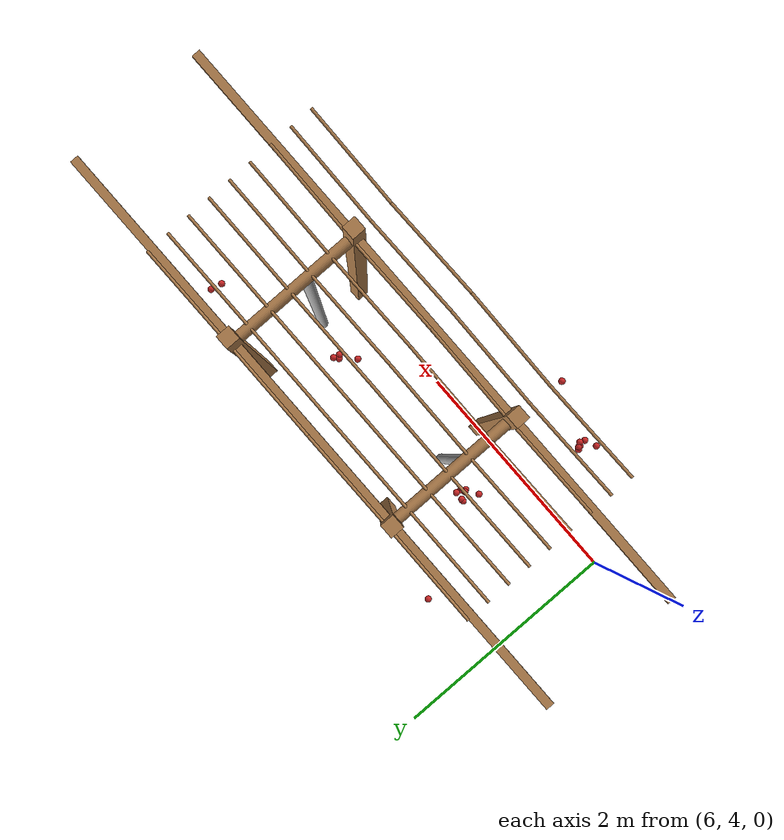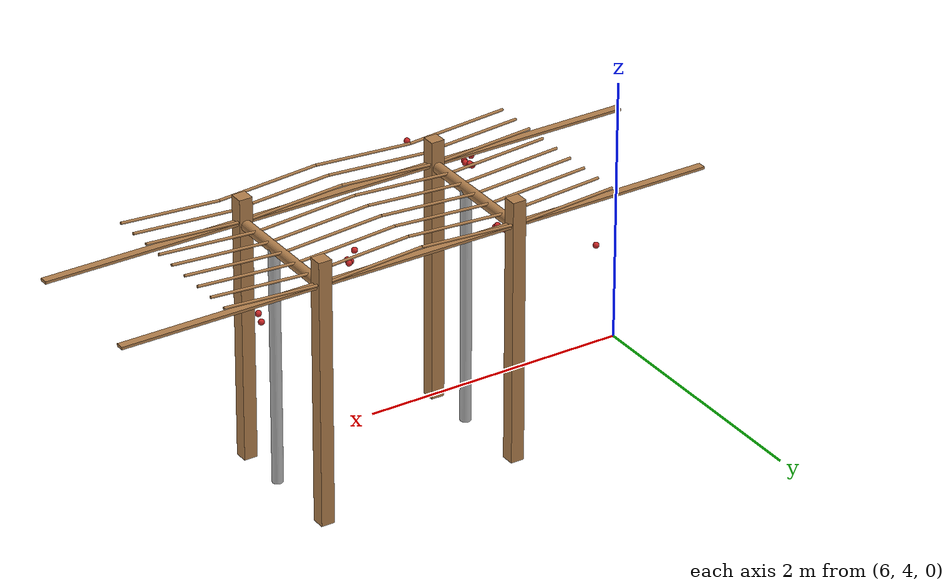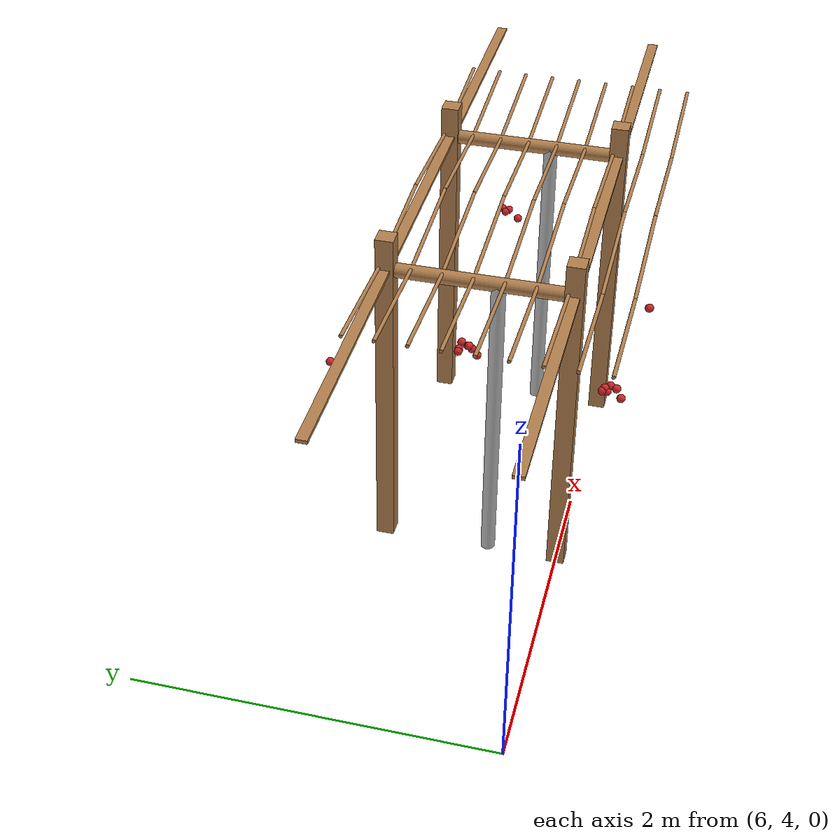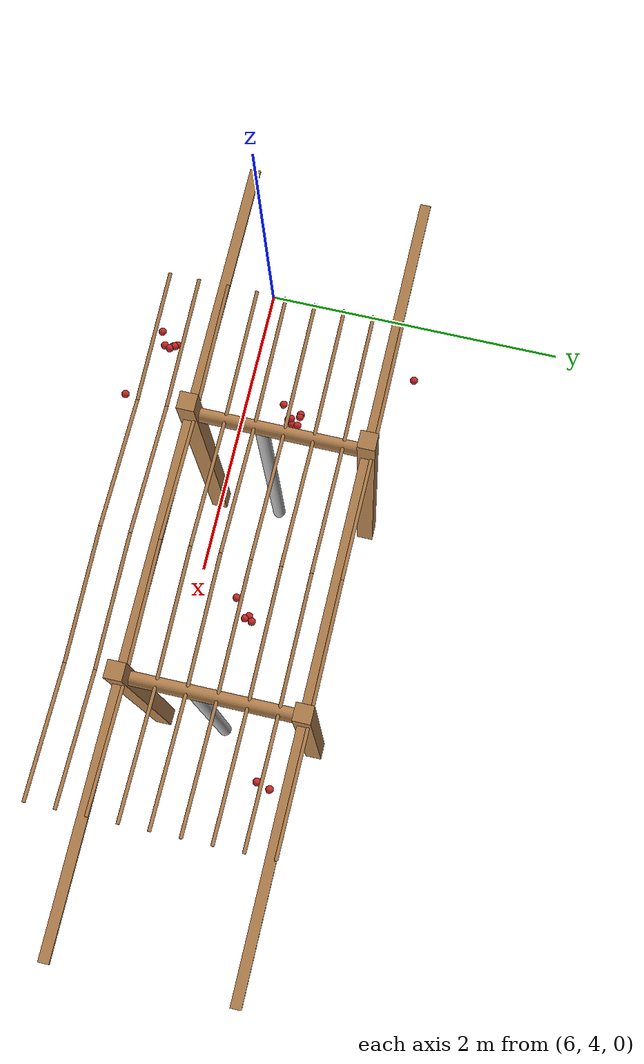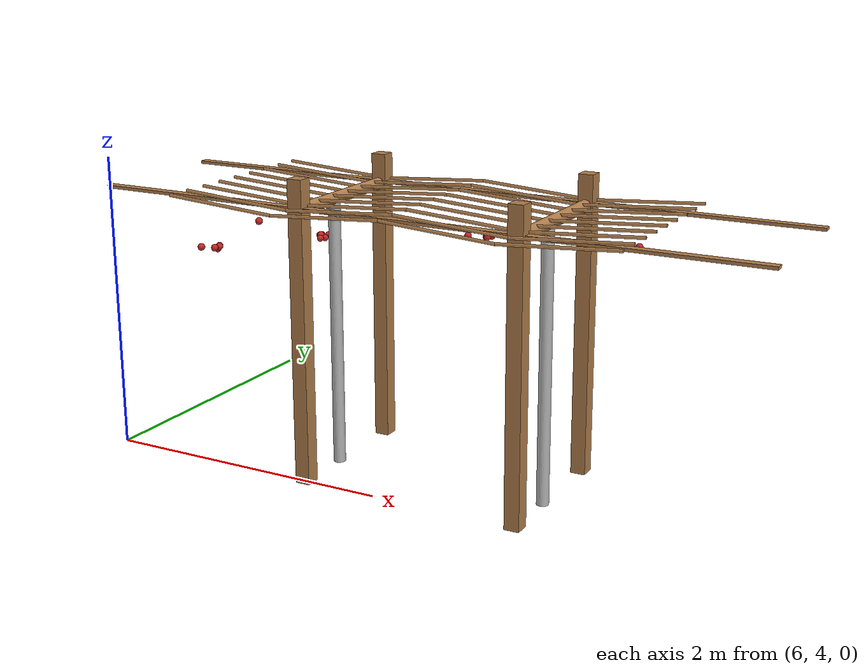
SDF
<sdf version="1.4">
 <model name="pergola">
  <include><name>post_59</name><pose>7.5 4.0 0 0 0 0</pose><uri>model://post</uri></include>
  <include><name>post_60</name><pose>7.5 5.0 0 0 0 0</pose><uri>model://post</uri></include>
  <include><name>post_70</name><pose>9.0 4.0 0 0 0 0</pose><uri>model://post</uri></include>
  <include><name>post_71</name><pose>9.0 5.0 0 0 0 0</pose><uri>model://post</uri></include>
  <link name="beam_48">
   <pose>6.75 4.0 1.81 0 0 0</pose>
   <collision name="collision"><geometry><box><size>1.5 0.06 0.02</size></box></geometry></collision>
   <visual name="visual">
    <geometry><box><size>1.5 0.06 0.02</size></box></geometry>
    <material><script><name>Gazebo/Wood</name></script></material>
   </visual>
   <inertial>
    <mass>5</mass>
    <inertia>
     <ixx>0.0016666666666666668</ixx>
     <ixy>0.0</ixy>
     <ixz>0.0</ixz>
     <iyy>0.9390000000000001</iyy>
     <iyz>0.0</iyz>
     <izz>0.9376666666666665</izz>
    </inertia>
   </inertial>
  </link>
  <link name="beam_49">
   <pose>6.75 5.0 1.81 0 0 0</pose>
   <collision name="collision"><geometry><box><size>1.5 0.06 0.02</size></box></geometry></collision>
   <visual name="visual">
    <geometry><box><size>1.5 0.06 0.02</size></box></geometry>
    <material><script><name>Gazebo/Wood</name></script></material>
   </visual>
   <inertial>
    <mass>5</mass>
    <inertia>
     <ixx>0.0016666666666666668</ixx>
     <ixy>0.0</ixy>
     <ixz>0.0</ixz>
     <iyy>0.9390000000000001</iyy>
     <iyz>0.0</iyz>
     <izz>0.9376666666666665</izz>
    </inertia>
   </inertial>
  </link>
  <link name="beam_59">
   <pose>8.25 4.0 1.81 0 0 0</pose>
   <collision name="collision"><geometry><box><size>1.5 0.06 0.02</size></box></geometry></collision>
   <visual name="visual">
    <geometry><box><size>1.5 0.06 0.02</size></box></geometry>
    <material><script><name>Gazebo/Wood</name></script></material>
   </visual>
   <inertial>
    <mass>5</mass>
    <inertia>
     <ixx>0.0016666666666666668</ixx>
     <ixy>0.0</ixy>
     <ixz>0.0</ixz>
     <iyy>0.9390000000000001</iyy>
     <iyz>0.0</iyz>
     <izz>0.9376666666666665</izz>
    </inertia>
   </inertial>
  </link>
  <link name="beam_60">
   <pose>8.25 5.0 1.81 0 0 0</pose>
   <collision name="collision"><geometry><box><size>1.5 0.06 0.02</size></box></geometry></collision>
   <visual name="visual">
    <geometry><box><size>1.5 0.06 0.02</size></box></geometry>
    <material><script><name>Gazebo/Wood</name></script></material>
   </visual>
   <inertial>
    <mass>5</mass>
    <inertia>
     <ixx>0.0016666666666666668</ixx>
     <ixy>0.0</ixy>
     <ixz>0.0</ixz>
     <iyy>0.9390000000000001</iyy>
     <iyz>0.0</iyz>
     <izz>0.9376666666666665</izz>
    </inertia>
   </inertial>
  </link>
  <link name="beam_70">
   <pose>9.75 4.0 1.81 0 0 0</pose>
   <collision name="collision"><geometry><box><size>1.5 0.06 0.02</size></box></geometry></collision>
   <visual name="visual">
    <geometry><box><size>1.5 0.06 0.02</size></box></geometry>
    <material><script><name>Gazebo/Wood</name></script></material>
   </visual>
   <inertial>
    <mass>5</mass>
    <inertia>
     <ixx>0.0016666666666666668</ixx>
     <ixy>0.0</ixy>
     <ixz>0.0</ixz>
     <iyy>0.9390000000000001</iyy>
     <iyz>0.0</iyz>
     <izz>0.9376666666666665</izz>
    </inertia>
   </inertial>
  </link>
  <link name="beam_71">
   <pose>9.75 5.0 1.81 0 0 0</pose>
   <collision name="collision"><geometry><box><size>1.5 0.06 0.02</size></box></geometry></collision>
   <visual name="visual">
    <geometry><box><size>1.5 0.06 0.02</size></box></geometry>
    <material><script><name>Gazebo/Wood</name></script></material>
   </visual>
   <inertial>
    <mass>5</mass>
    <inertia>
     <ixx>0.0016666666666666668</ixx>
     <ixy>0.0</ixy>
     <ixz>0.0</ixz>
     <iyy>0.9390000000000001</iyy>
     <iyz>0.0</iyz>
     <izz>0.9376666666666665</izz>
    </inertia>
   </inertial>
  </link>
  <include><name>tree_54</name><pose>7.5 4.4 0 0 0 0</pose><uri>model://tree_trunk</uri></include>
  <include><name>tree_64</name><pose>9.0 4.4 0 0 0 0</pose><uri>model://tree_trunk</uri></include>
  <link name="baseBranch_54">
   <pose>7.5 4.5 1.8 1.5707963267948966 0 0</pose>
   <collision name="collision">
    <geometry><cylinder><radius>0.04</radius><length>0.94</length></cylinder></geometry>
   </collision>
   <visual name="visual">
    <geometry><cylinder><radius>0.04</radius><length>0.94</length></cylinder></geometry>
    <material><script><name>Gazebo/WoodFloor</name></script></material>
   </visual>
   <inertial>
    <mass>10</mass>
    <inertia>
     <ixx>0.7403333333333334</ixx>
     <ixy>0.0</ixy>
     <ixz>0.0</ixz>
     <iyy>0.7403333333333334</iyy>
     <iyz>0.0</iyz>
     <izz>0.008</izz>
    </inertia>
   </inertial>
  </link>
  <link name="baseBranch_64">
   <pose>9.0 4.5 1.8 1.5707963267948966 0 0</pose>
   <collision name="collision">
    <geometry><cylinder><radius>0.04</radius><length>0.94</length></cylinder></geometry>
   </collision>
   <visual name="visual">
    <geometry><cylinder><radius>0.04</radius><length>0.94</length></cylinder></geometry>
    <material><script><name>Gazebo/WoodFloor</name></script></material>
   </visual>
   <inertial>
    <mass>10</mass>
    <inertia>
     <ixx>0.7403333333333334</ixx>
     <ixy>0.0</ixy>
     <ixz>0.0</ixz>
     <iyy>0.7403333333333334</iyy>
     <iyz>0.0</iyz>
     <izz>0.008</izz>
    </inertia>
   </inertial>
  </link>
  <link name="vine_525">
   <pose>7.125 3.6966666666666663 1.85 0 -1.5042281630190728 0</pose>
   <collision name="collision">
    <geometry><cylinder><radius>0.01</radius><length>0.7516648189186453</length></cylinder></geometry>
   </collision>
   <visual name="visual">
    <geometry><cylinder><radius>0.01</radius><length>0.7516648189186453</length></cylinder></geometry>
    <material><script><name>Gazebo/WoodFloor</name></script></material>
   </visual>
   <inertial>
    <mass>5</mass>
    <inertia>
     <ixx>0.23554166666666657</ixx>
     <ixy>0.0</ixy>
     <ixz>0.0</ixz>
     <iyy>0.23554166666666657</iyy>
     <iyz>0.0</iyz>
     <izz>0.00025</izz>
    </inertia>
   </inertial>
  </link>
  <link name="vine_527">
   <pose>7.125 3.863333333333333 1.85 0 -1.5042281630190728 0</pose>
   <collision name="collision">
    <geometry><cylinder><radius>0.01</radius><length>0.7516648189186453</length></cylinder></geometry>
   </collision>
   <visual name="visual">
    <geometry><cylinder><radius>0.01</radius><length>0.7516648189186453</length></cylinder></geometry>
    <material><script><name>Gazebo/WoodFloor</name></script></material>
   </visual>
   <inertial>
    <mass>5</mass>
    <inertia>
     <ixx>0.23554166666666657</ixx>
     <ixy>0.0</ixy>
     <ixz>0.0</ixz>
     <iyy>0.23554166666666657</iyy>
     <iyz>0.0</iyz>
     <izz>0.00025</izz>
    </inertia>
   </inertial>
  </link>
  <link name="vine_529">
   <pose>7.125 4.03 1.85 0 -1.5042281630190728 0</pose>
   <collision name="collision">
    <geometry><cylinder><radius>0.01</radius><length>0.7516648189186453</length></cylinder></geometry>
   </collision>
   <visual name="visual">
    <geometry><cylinder><radius>0.01</radius><length>0.7516648189186453</length></cylinder></geometry>
    <material><script><name>Gazebo/WoodFloor</name></script></material>
   </visual>
   <inertial>
    <mass>5</mass>
    <inertia>
     <ixx>0.23554166666666657</ixx>
     <ixy>0.0</ixy>
     <ixz>0.0</ixz>
     <iyy>0.23554166666666657</iyy>
     <iyz>0.0</iyz>
     <izz>0.00025</izz>
    </inertia>
   </inertial>
  </link>
  <link name="vine_531">
   <pose>7.125 4.196666666666666 1.85 0 -1.5042281630190728 0</pose>
   <collision name="collision">
    <geometry><cylinder><radius>0.01</radius><length>0.7516648189186453</length></cylinder></geometry>
   </collision>
   <visual name="visual">
    <geometry><cylinder><radius>0.01</radius><length>0.7516648189186453</length></cylinder></geometry>
    <material><script><name>Gazebo/WoodFloor</name></script></material>
   </visual>
   <inertial>
    <mass>5</mass>
    <inertia>
     <ixx>0.23554166666666657</ixx>
     <ixy>0.0</ixy>
     <ixz>0.0</ixz>
     <iyy>0.23554166666666657</iyy>
     <iyz>0.0</iyz>
     <izz>0.00025</izz>
    </inertia>
   </inertial>
  </link>
  <link name="vine_533">
   <pose>7.125 4.363333333333333 1.85 0 -1.5042281630190728 0</pose>
   <collision name="collision">
    <geometry><cylinder><radius>0.01</radius><length>0.7516648189186453</length></cylinder></geometry>
   </collision>
   <visual name="visual">
    <geometry><cylinder><radius>0.01</radius><length>0.7516648189186453</length></cylinder></geometry>
    <material><script><name>Gazebo/WoodFloor</name></script></material>
   </visual>
   <inertial>
    <mass>5</mass>
    <inertia>
     <ixx>0.23554166666666657</ixx>
     <ixy>0.0</ixy>
     <ixz>0.0</ixz>
     <iyy>0.23554166666666657</iyy>
     <iyz>0.0</iyz>
     <izz>0.00025</izz>
    </inertia>
   </inertial>
  </link>
  <link name="vine_535">
   <pose>7.125 4.53 1.85 0 -1.5042281630190728 0</pose>
   <collision name="collision">
    <geometry><cylinder><radius>0.01</radius><length>0.7516648189186453</length></cylinder></geometry>
   </collision>
   <visual name="visual">
    <geometry><cylinder><radius>0.01</radius><length>0.7516648189186453</length></cylinder></geometry>
    <material><script><name>Gazebo/WoodFloor</name></script></material>
   </visual>
   <inertial>
    <mass>5</mass>
    <inertia>
     <ixx>0.23554166666666657</ixx>
     <ixy>0.0</ixy>
     <ixz>0.0</ixz>
     <iyy>0.23554166666666657</iyy>
     <iyz>0.0</iyz>
     <izz>0.00025</izz>
    </inertia>
   </inertial>
  </link>
  <link name="vine_537">
   <pose>7.125 4.696666666666666 1.85 0 -1.5042281630190728 0</pose>
   <collision name="collision">
    <geometry><cylinder><radius>0.01</radius><length>0.7516648189186453</length></cylinder></geometry>
   </collision>
   <visual name="visual">
    <geometry><cylinder><radius>0.01</radius><length>0.7516648189186453</length></cylinder></geometry>
    <material><script><name>Gazebo/WoodFloor</name></script></material>
   </visual>
   <inertial>
    <mass>5</mass>
    <inertia>
     <ixx>0.23554166666666657</ixx>
     <ixy>0.0</ixy>
     <ixz>0.0</ixz>
     <iyy>0.23554166666666657</iyy>
     <iyz>0.0</iyz>
     <izz>0.00025</izz>
    </inertia>
   </inertial>
  </link>
  <link name="vine_539">
   <pose>7.125 4.863333333333333 1.85 0 -1.5042281630190728 0</pose>
   <collision name="collision">
    <geometry><cylinder><radius>0.01</radius><length>0.7516648189186453</length></cylinder></geometry>
   </collision>
   <visual name="visual">
    <geometry><cylinder><radius>0.01</radius><length>0.7516648189186453</length></cylinder></geometry>
    <material><script><name>Gazebo/WoodFloor</name></script></material>
   </visual>
   <inertial>
    <mass>5</mass>
    <inertia>
     <ixx>0.23554166666666657</ixx>
     <ixy>0.0</ixy>
     <ixz>0.0</ixz>
     <iyy>0.23554166666666657</iyy>
     <iyz>0.0</iyz>
     <izz>0.00025</izz>
    </inertia>
   </inertial>
  </link>
  <link name="vine_541">
   <pose>7.125 5.03 1.85 0 -1.5042281630190728 0</pose>
   <collision name="collision">
    <geometry><cylinder><radius>0.01</radius><length>0.7516648189186453</length></cylinder></geometry>
   </collision>
   <visual name="visual">
    <geometry><cylinder><radius>0.01</radius><length>0.7516648189186453</length></cylinder></geometry>
    <material><script><name>Gazebo/WoodFloor</name></script></material>
   </visual>
   <inertial>
    <mass>5</mass>
    <inertia>
     <ixx>0.23554166666666657</ixx>
     <ixy>0.0</ixy>
     <ixz>0.0</ixz>
     <iyy>0.23554166666666657</iyy>
     <iyz>0.0</iyz>
     <izz>0.00025</izz>
    </inertia>
   </inertial>
  </link>
  <link name="vine_644">
   <pose>7.875 3.6966666666666663 1.85 0 1.5042281630190728 0</pose>
   <collision name="collision">
    <geometry><cylinder><radius>0.01</radius><length>0.7516648189186453</length></cylinder></geometry>
   </collision>
   <visual name="visual">
    <geometry><cylinder><radius>0.01</radius><length>0.7516648189186453</length></cylinder></geometry>
    <material><script><name>Gazebo/WoodFloor</name></script></material>
   </visual>
   <inertial>
    <mass>5</mass>
    <inertia>
     <ixx>0.23554166666666657</ixx>
     <ixy>0.0</ixy>
     <ixz>0.0</ixz>
     <iyy>0.23554166666666657</iyy>
     <iyz>0.0</iyz>
     <izz>0.00025</izz>
    </inertia>
   </inertial>
  </link>
  <link name="vine_645">
   <pose>8.625 3.6966666666666663 1.85 0 -1.5042281630190728 0</pose>
   <collision name="collision">
    <geometry><cylinder><radius>0.01</radius><length>0.7516648189186453</length></cylinder></geometry>
   </collision>
   <visual name="visual">
    <geometry><cylinder><radius>0.01</radius><length>0.7516648189186453</length></cylinder></geometry>
    <material><script><name>Gazebo/WoodFloor</name></script></material>
   </visual>
   <inertial>
    <mass>5</mass>
    <inertia>
     <ixx>0.23554166666666657</ixx>
     <ixy>0.0</ixy>
     <ixz>0.0</ixz>
     <iyy>0.23554166666666657</iyy>
     <iyz>0.0</iyz>
     <izz>0.00025</izz>
    </inertia>
   </inertial>
  </link>
  <link name="vine_646">
   <pose>7.875 3.863333333333333 1.85 0 1.5042281630190728 0</pose>
   <collision name="collision">
    <geometry><cylinder><radius>0.01</radius><length>0.7516648189186453</length></cylinder></geometry>
   </collision>
   <visual name="visual">
    <geometry><cylinder><radius>0.01</radius><length>0.7516648189186453</length></cylinder></geometry>
    <material><script><name>Gazebo/WoodFloor</name></script></material>
   </visual>
   <inertial>
    <mass>5</mass>
    <inertia>
     <ixx>0.23554166666666657</ixx>
     <ixy>0.0</ixy>
     <ixz>0.0</ixz>
     <iyy>0.23554166666666657</iyy>
     <iyz>0.0</iyz>
     <izz>0.00025</izz>
    </inertia>
   </inertial>
  </link>
  <link name="vine_647">
   <pose>8.625 3.863333333333333 1.85 0 -1.5042281630190728 0</pose>
   <collision name="collision">
    <geometry><cylinder><radius>0.01</radius><length>0.7516648189186453</length></cylinder></geometry>
   </collision>
   <visual name="visual">
    <geometry><cylinder><radius>0.01</radius><length>0.7516648189186453</length></cylinder></geometry>
    <material><script><name>Gazebo/WoodFloor</name></script></material>
   </visual>
   <inertial>
    <mass>5</mass>
    <inertia>
     <ixx>0.23554166666666657</ixx>
     <ixy>0.0</ixy>
     <ixz>0.0</ixz>
     <iyy>0.23554166666666657</iyy>
     <iyz>0.0</iyz>
     <izz>0.00025</izz>
    </inertia>
   </inertial>
  </link>
  <link name="vine_648">
   <pose>7.875 4.03 1.85 0 1.5042281630190728 0</pose>
   <collision name="collision">
    <geometry><cylinder><radius>0.01</radius><length>0.7516648189186453</length></cylinder></geometry>
   </collision>
   <visual name="visual">
    <geometry><cylinder><radius>0.01</radius><length>0.7516648189186453</length></cylinder></geometry>
    <material><script><name>Gazebo/WoodFloor</name></script></material>
   </visual>
   <inertial>
    <mass>5</mass>
    <inertia>
     <ixx>0.23554166666666657</ixx>
     <ixy>0.0</ixy>
     <ixz>0.0</ixz>
     <iyy>0.23554166666666657</iyy>
     <iyz>0.0</iyz>
     <izz>0.00025</izz>
    </inertia>
   </inertial>
  </link>
  <link name="vine_649">
   <pose>8.625 4.03 1.85 0 -1.5042281630190728 0</pose>
   <collision name="collision">
    <geometry><cylinder><radius>0.01</radius><length>0.7516648189186453</length></cylinder></geometry>
   </collision>
   <visual name="visual">
    <geometry><cylinder><radius>0.01</radius><length>0.7516648189186453</length></cylinder></geometry>
    <material><script><name>Gazebo/WoodFloor</name></script></material>
   </visual>
   <inertial>
    <mass>5</mass>
    <inertia>
     <ixx>0.23554166666666657</ixx>
     <ixy>0.0</ixy>
     <ixz>0.0</ixz>
     <iyy>0.23554166666666657</iyy>
     <iyz>0.0</iyz>
     <izz>0.00025</izz>
    </inertia>
   </inertial>
  </link>
  <link name="vine_650">
   <pose>7.875 4.196666666666666 1.85 0 1.5042281630190728 0</pose>
   <collision name="collision">
    <geometry><cylinder><radius>0.01</radius><length>0.7516648189186453</length></cylinder></geometry>
   </collision>
   <visual name="visual">
    <geometry><cylinder><radius>0.01</radius><length>0.7516648189186453</length></cylinder></geometry>
    <material><script><name>Gazebo/WoodFloor</name></script></material>
   </visual>
   <inertial>
    <mass>5</mass>
    <inertia>
     <ixx>0.23554166666666657</ixx>
     <ixy>0.0</ixy>
     <ixz>0.0</ixz>
     <iyy>0.23554166666666657</iyy>
     <iyz>0.0</iyz>
     <izz>0.00025</izz>
    </inertia>
   </inertial>
  </link>
  <link name="vine_651">
   <pose>8.625 4.196666666666666 1.85 0 -1.5042281630190728 0</pose>
   <collision name="collision">
    <geometry><cylinder><radius>0.01</radius><length>0.7516648189186453</length></cylinder></geometry>
   </collision>
   <visual name="visual">
    <geometry><cylinder><radius>0.01</radius><length>0.7516648189186453</length></cylinder></geometry>
    <material><script><name>Gazebo/WoodFloor</name></script></material>
   </visual>
   <inertial>
    <mass>5</mass>
    <inertia>
     <ixx>0.23554166666666657</ixx>
     <ixy>0.0</ixy>
     <ixz>0.0</ixz>
     <iyy>0.23554166666666657</iyy>
     <iyz>0.0</iyz>
     <izz>0.00025</izz>
    </inertia>
   </inertial>
  </link>
  <link name="vine_652">
   <pose>7.875 4.363333333333333 1.85 0 1.5042281630190728 0</pose>
   <collision name="collision">
    <geometry><cylinder><radius>0.01</radius><length>0.7516648189186453</length></cylinder></geometry>
   </collision>
   <visual name="visual">
    <geometry><cylinder><radius>0.01</radius><length>0.7516648189186453</length></cylinder></geometry>
    <material><script><name>Gazebo/WoodFloor</name></script></material>
   </visual>
   <inertial>
    <mass>5</mass>
    <inertia>
     <ixx>0.23554166666666657</ixx>
     <ixy>0.0</ixy>
     <ixz>0.0</ixz>
     <iyy>0.23554166666666657</iyy>
     <iyz>0.0</iyz>
     <izz>0.00025</izz>
    </inertia>
   </inertial>
  </link>
  <link name="vine_653">
   <pose>8.625 4.363333333333333 1.85 0 -1.5042281630190728 0</pose>
   <collision name="collision">
    <geometry><cylinder><radius>0.01</radius><length>0.7516648189186453</length></cylinder></geometry>
   </collision>
   <visual name="visual">
    <geometry><cylinder><radius>0.01</radius><length>0.7516648189186453</length></cylinder></geometry>
    <material><script><name>Gazebo/WoodFloor</name></script></material>
   </visual>
   <inertial>
    <mass>5</mass>
    <inertia>
     <ixx>0.23554166666666657</ixx>
     <ixy>0.0</ixy>
     <ixz>0.0</ixz>
     <iyy>0.23554166666666657</iyy>
     <iyz>0.0</iyz>
     <izz>0.00025</izz>
    </inertia>
   </inertial>
  </link>
  <link name="vine_654">
   <pose>7.875 4.53 1.85 0 1.5042281630190728 0</pose>
   <collision name="collision">
    <geometry><cylinder><radius>0.01</radius><length>0.7516648189186453</length></cylinder></geometry>
   </collision>
   <visual name="visual">
    <geometry><cylinder><radius>0.01</radius><length>0.7516648189186453</length></cylinder></geometry>
    <material><script><name>Gazebo/WoodFloor</name></script></material>
   </visual>
   <inertial>
    <mass>5</mass>
    <inertia>
     <ixx>0.23554166666666657</ixx>
     <ixy>0.0</ixy>
     <ixz>0.0</ixz>
     <iyy>0.23554166666666657</iyy>
     <iyz>0.0</iyz>
     <izz>0.00025</izz>
    </inertia>
   </inertial>
  </link>
  <link name="vine_655">
   <pose>8.625 4.53 1.85 0 -1.5042281630190728 0</pose>
   <collision name="collision">
    <geometry><cylinder><radius>0.01</radius><length>0.7516648189186453</length></cylinder></geometry>
   </collision>
   <visual name="visual">
    <geometry><cylinder><radius>0.01</radius><length>0.7516648189186453</length></cylinder></geometry>
    <material><script><name>Gazebo/WoodFloor</name></script></material>
   </visual>
   <inertial>
    <mass>5</mass>
    <inertia>
     <ixx>0.23554166666666657</ixx>
     <ixy>0.0</ixy>
     <ixz>0.0</ixz>
     <iyy>0.23554166666666657</iyy>
     <iyz>0.0</iyz>
     <izz>0.00025</izz>
    </inertia>
   </inertial>
  </link>
  <link name="vine_656">
   <pose>7.875 4.696666666666666 1.85 0 1.5042281630190728 0</pose>
   <collision name="collision">
    <geometry><cylinder><radius>0.01</radius><length>0.7516648189186453</length></cylinder></geometry>
   </collision>
   <visual name="visual">
    <geometry><cylinder><radius>0.01</radius><length>0.7516648189186453</length></cylinder></geometry>
    <material><script><name>Gazebo/WoodFloor</name></script></material>
   </visual>
   <inertial>
    <mass>5</mass>
    <inertia>
     <ixx>0.23554166666666657</ixx>
     <ixy>0.0</ixy>
     <ixz>0.0</ixz>
     <iyy>0.23554166666666657</iyy>
     <iyz>0.0</iyz>
     <izz>0.00025</izz>
    </inertia>
   </inertial>
  </link>
  <link name="vine_657">
   <pose>8.625 4.696666666666666 1.85 0 -1.5042281630190728 0</pose>
   <collision name="collision">
    <geometry><cylinder><radius>0.01</radius><length>0.7516648189186453</length></cylinder></geometry>
   </collision>
   <visual name="visual">
    <geometry><cylinder><radius>0.01</radius><length>0.7516648189186453</length></cylinder></geometry>
    <material><script><name>Gazebo/WoodFloor</name></script></material>
   </visual>
   <inertial>
    <mass>5</mass>
    <inertia>
     <ixx>0.23554166666666657</ixx>
     <ixy>0.0</ixy>
     <ixz>0.0</ixz>
     <iyy>0.23554166666666657</iyy>
     <iyz>0.0</iyz>
     <izz>0.00025</izz>
    </inertia>
   </inertial>
  </link>
  <link name="vine_658">
   <pose>7.875 4.863333333333333 1.85 0 1.5042281630190728 0</pose>
   <collision name="collision">
    <geometry><cylinder><radius>0.01</radius><length>0.7516648189186453</length></cylinder></geometry>
   </collision>
   <visual name="visual">
    <geometry><cylinder><radius>0.01</radius><length>0.7516648189186453</length></cylinder></geometry>
    <material><script><name>Gazebo/WoodFloor</name></script></material>
   </visual>
   <inertial>
    <mass>5</mass>
    <inertia>
     <ixx>0.23554166666666657</ixx>
     <ixy>0.0</ixy>
     <ixz>0.0</ixz>
     <iyy>0.23554166666666657</iyy>
     <iyz>0.0</iyz>
     <izz>0.00025</izz>
    </inertia>
   </inertial>
  </link>
  <link name="vine_659">
   <pose>8.625 4.863333333333333 1.85 0 -1.5042281630190728 0</pose>
   <collision name="collision">
    <geometry><cylinder><radius>0.01</radius><length>0.7516648189186453</length></cylinder></geometry>
   </collision>
   <visual name="visual">
    <geometry><cylinder><radius>0.01</radius><length>0.7516648189186453</length></cylinder></geometry>
    <material><script><name>Gazebo/WoodFloor</name></script></material>
   </visual>
   <inertial>
    <mass>5</mass>
    <inertia>
     <ixx>0.23554166666666657</ixx>
     <ixy>0.0</ixy>
     <ixz>0.0</ixz>
     <iyy>0.23554166666666657</iyy>
     <iyz>0.0</iyz>
     <izz>0.00025</izz>
    </inertia>
   </inertial>
  </link>
  <link name="vine_660">
   <pose>7.875 5.03 1.85 0 1.5042281630190728 0</pose>
   <collision name="collision">
    <geometry><cylinder><radius>0.01</radius><length>0.7516648189186453</length></cylinder></geometry>
   </collision>
   <visual name="visual">
    <geometry><cylinder><radius>0.01</radius><length>0.7516648189186453</length></cylinder></geometry>
    <material><script><name>Gazebo/WoodFloor</name></script></material>
   </visual>
   <inertial>
    <mass>5</mass>
    <inertia>
     <ixx>0.23554166666666657</ixx>
     <ixy>0.0</ixy>
     <ixz>0.0</ixz>
     <iyy>0.23554166666666657</iyy>
     <iyz>0.0</iyz>
     <izz>0.00025</izz>
    </inertia>
   </inertial>
  </link>
  <link name="vine_661">
   <pose>8.625 5.03 1.85 0 -1.5042281630190728 0</pose>
   <collision name="collision">
    <geometry><cylinder><radius>0.01</radius><length>0.7516648189186453</length></cylinder></geometry>
   </collision>
   <visual name="visual">
    <geometry><cylinder><radius>0.01</radius><length>0.7516648189186453</length></cylinder></geometry>
    <material><script><name>Gazebo/WoodFloor</name></script></material>
   </visual>
   <inertial>
    <mass>5</mass>
    <inertia>
     <ixx>0.23554166666666657</ixx>
     <ixy>0.0</ixy>
     <ixz>0.0</ixz>
     <iyy>0.23554166666666657</iyy>
     <iyz>0.0</iyz>
     <izz>0.00025</izz>
    </inertia>
   </inertial>
  </link>
  <link name="vine_764">
   <pose>9.375 3.6966666666666663 1.85 0 1.5042281630190728 0</pose>
   <collision name="collision">
    <geometry><cylinder><radius>0.01</radius><length>0.7516648189186453</length></cylinder></geometry>
   </collision>
   <visual name="visual">
    <geometry><cylinder><radius>0.01</radius><length>0.7516648189186453</length></cylinder></geometry>
    <material><script><name>Gazebo/WoodFloor</name></script></material>
   </visual>
   <inertial>
    <mass>5</mass>
    <inertia>
     <ixx>0.23554166666666657</ixx>
     <ixy>0.0</ixy>
     <ixz>0.0</ixz>
     <iyy>0.23554166666666657</iyy>
     <iyz>0.0</iyz>
     <izz>0.00025</izz>
    </inertia>
   </inertial>
  </link>
  <link name="vine_766">
   <pose>9.375 3.863333333333333 1.85 0 1.5042281630190728 0</pose>
   <collision name="collision">
    <geometry><cylinder><radius>0.01</radius><length>0.7516648189186453</length></cylinder></geometry>
   </collision>
   <visual name="visual">
    <geometry><cylinder><radius>0.01</radius><length>0.7516648189186453</length></cylinder></geometry>
    <material><script><name>Gazebo/WoodFloor</name></script></material>
   </visual>
   <inertial>
    <mass>5</mass>
    <inertia>
     <ixx>0.23554166666666657</ixx>
     <ixy>0.0</ixy>
     <ixz>0.0</ixz>
     <iyy>0.23554166666666657</iyy>
     <iyz>0.0</iyz>
     <izz>0.00025</izz>
    </inertia>
   </inertial>
  </link>
  <link name="vine_768">
   <pose>9.375 4.03 1.85 0 1.5042281630190728 0</pose>
   <collision name="collision">
    <geometry><cylinder><radius>0.01</radius><length>0.7516648189186453</length></cylinder></geometry>
   </collision>
   <visual name="visual">
    <geometry><cylinder><radius>0.01</radius><length>0.7516648189186453</length></cylinder></geometry>
    <material><script><name>Gazebo/WoodFloor</name></script></material>
   </visual>
   <inertial>
    <mass>5</mass>
    <inertia>
     <ixx>0.23554166666666657</ixx>
     <ixy>0.0</ixy>
     <ixz>0.0</ixz>
     <iyy>0.23554166666666657</iyy>
     <iyz>0.0</iyz>
     <izz>0.00025</izz>
    </inertia>
   </inertial>
  </link>
  <link name="vine_770">
   <pose>9.375 4.196666666666666 1.85 0 1.5042281630190728 0</pose>
   <collision name="collision">
    <geometry><cylinder><radius>0.01</radius><length>0.7516648189186453</length></cylinder></geometry>
   </collision>
   <visual name="visual">
    <geometry><cylinder><radius>0.01</radius><length>0.7516648189186453</length></cylinder></geometry>
    <material><script><name>Gazebo/WoodFloor</name></script></material>
   </visual>
   <inertial>
    <mass>5</mass>
    <inertia>
     <ixx>0.23554166666666657</ixx>
     <ixy>0.0</ixy>
     <ixz>0.0</ixz>
     <iyy>0.23554166666666657</iyy>
     <iyz>0.0</iyz>
     <izz>0.00025</izz>
    </inertia>
   </inertial>
  </link>
  <link name="vine_772">
   <pose>9.375 4.363333333333333 1.85 0 1.5042281630190728 0</pose>
   <collision name="collision">
    <geometry><cylinder><radius>0.01</radius><length>0.7516648189186453</length></cylinder></geometry>
   </collision>
   <visual name="visual">
    <geometry><cylinder><radius>0.01</radius><length>0.7516648189186453</length></cylinder></geometry>
    <material><script><name>Gazebo/WoodFloor</name></script></material>
   </visual>
   <inertial>
    <mass>5</mass>
    <inertia>
     <ixx>0.23554166666666657</ixx>
     <ixy>0.0</ixy>
     <ixz>0.0</ixz>
     <iyy>0.23554166666666657</iyy>
     <iyz>0.0</iyz>
     <izz>0.00025</izz>
    </inertia>
   </inertial>
  </link>
  <link name="vine_774">
   <pose>9.375 4.53 1.85 0 1.5042281630190728 0</pose>
   <collision name="collision">
    <geometry><cylinder><radius>0.01</radius><length>0.7516648189186453</length></cylinder></geometry>
   </collision>
   <visual name="visual">
    <geometry><cylinder><radius>0.01</radius><length>0.7516648189186453</length></cylinder></geometry>
    <material><script><name>Gazebo/WoodFloor</name></script></material>
   </visual>
   <inertial>
    <mass>5</mass>
    <inertia>
     <ixx>0.23554166666666657</ixx>
     <ixy>0.0</ixy>
     <ixz>0.0</ixz>
     <iyy>0.23554166666666657</iyy>
     <iyz>0.0</iyz>
     <izz>0.00025</izz>
    </inertia>
   </inertial>
  </link>
  <link name="vine_776">
   <pose>9.375 4.696666666666666 1.85 0 1.5042281630190728 0</pose>
   <collision name="collision">
    <geometry><cylinder><radius>0.01</radius><length>0.7516648189186453</length></cylinder></geometry>
   </collision>
   <visual name="visual">
    <geometry><cylinder><radius>0.01</radius><length>0.7516648189186453</length></cylinder></geometry>
    <material><script><name>Gazebo/WoodFloor</name></script></material>
   </visual>
   <inertial>
    <mass>5</mass>
    <inertia>
     <ixx>0.23554166666666657</ixx>
     <ixy>0.0</ixy>
     <ixz>0.0</ixz>
     <iyy>0.23554166666666657</iyy>
     <iyz>0.0</iyz>
     <izz>0.00025</izz>
    </inertia>
   </inertial>
  </link>
  <link name="vine_778">
   <pose>9.375 4.863333333333333 1.85 0 1.5042281630190728 0</pose>
   <collision name="collision">
    <geometry><cylinder><radius>0.01</radius><length>0.7516648189186453</length></cylinder></geometry>
   </collision>
   <visual name="visual">
    <geometry><cylinder><radius>0.01</radius><length>0.7516648189186453</length></cylinder></geometry>
    <material><script><name>Gazebo/WoodFloor</name></script></material>
   </visual>
   <inertial>
    <mass>5</mass>
    <inertia>
     <ixx>0.23554166666666657</ixx>
     <ixy>0.0</ixy>
     <ixz>0.0</ixz>
     <iyy>0.23554166666666657</iyy>
     <iyz>0.0</iyz>
     <izz>0.00025</izz>
    </inertia>
   </inertial>
  </link>
  <link name="vine_780">
   <pose>9.375 5.03 1.85 0 1.5042281630190728 0</pose>
   <collision name="collision">
    <geometry><cylinder><radius>0.01</radius><length>0.7516648189186453</length></cylinder></geometry>
   </collision>
   <visual name="visual">
    <geometry><cylinder><radius>0.01</radius><length>0.7516648189186453</length></cylinder></geometry>
    <material><script><name>Gazebo/WoodFloor</name></script></material>
   </visual>
   <inertial>
    <mass>5</mass>
    <inertia>
     <ixx>0.23554166666666657</ixx>
     <ixy>0.0</ixy>
     <ixz>0.0</ixz>
     <iyy>0.23554166666666657</iyy>
     <iyz>0.0</iyz>
     <izz>0.00025</izz>
    </inertia>
   </inertial>
  </link>
  <link name="fruit_1">
   <pose>8.426415247553981 4.4763846363574915 1.6430066512100305 0 0 0</pose>
   <collision name="fruit_collision_1"><geometry><sphere><radius>0.022</radius></sphere></geometry></collision>
   <visual name="visual">
    <geometry><sphere><radius>0.022</radius></sphere></geometry>
    <material><script><name>Gazebo/Red</name></script></material>
   </visual>
   <inertial>
    <mass>0.05</mass>
    <inertia>
     <ixx>9.679999999999999e-06</ixx>
     <ixy>0.0</ixy>
     <ixz>0.0</ixz>
     <iyy>9.679999999999999e-06</iyy>
     <iyz>0.0</iyz>
     <izz>9.679999999999999e-06</izz>
    </inertia>
   </inertial>
   <sensor name="fruit_contact_1" type="contact">
    <contact><collision>fruit_collision_1</collision></contact>
   </sensor>
  </link>
  <link name="fruit_4">
   <pose>7.247767065595058 4.450626055521007 1.5189631812422277 0 0 0</pose>
   <collision name="fruit_collision_4"><geometry><sphere><radius>0.022</radius></sphere></geometry></collision>
   <visual name="visual">
    <geometry><sphere><radius>0.022</radius></sphere></geometry>
    <material><script><name>Gazebo/Red</name></script></material>
   </visual>
   <inertial>
    <mass>0.05</mass>
    <inertia>
     <ixx>9.679999999999999e-06</ixx>
     <ixy>0.0</ixy>
     <ixz>0.0</ixz>
     <iyy>9.679999999999999e-06</iyy>
     <iyz>0.0</iyz>
     <izz>9.679999999999999e-06</izz>
    </inertia>
   </inertial>
   <sensor name="fruit_contact_4" type="contact">
    <contact><collision>fruit_collision_4</collision></contact>
   </sensor>
  </link>
  <link name="fruit_6">
   <pose>6.990798855748159 3.6744246523969775 1.5779322164709866 0 0 0</pose>
   <collision name="fruit_collision_6"><geometry><sphere><radius>0.022</radius></sphere></geometry></collision>
   <visual name="visual">
    <geometry><sphere><radius>0.022</radius></sphere></geometry>
    <material><script><name>Gazebo/Red</name></script></material>
   </visual>
   <inertial>
    <mass>0.05</mass>
    <inertia>
     <ixx>9.679999999999999e-06</ixx>
     <ixy>0.0</ixy>
     <ixz>0.0</ixz>
     <iyy>9.679999999999999e-06</iyy>
     <iyz>0.0</iyz>
     <izz>9.679999999999999e-06</izz>
    </inertia>
   </inertial>
   <sensor name="fruit_contact_6" type="contact">
    <contact><collision>fruit_collision_6</collision></contact>
   </sensor>
  </link>
  <link name="fruit_54">
   <pose>6.954141079918483 5.150159692562957 1.5568561171565345 0 0 0</pose>
   <collision name="fruit_collision_54"><geometry><sphere><radius>0.022</radius></sphere></geometry></collision>
   <visual name="visual">
    <geometry><sphere><radius>0.022</radius></sphere></geometry>
    <material><script><name>Gazebo/Red</name></script></material>
   </visual>
   <inertial>
    <mass>0.05</mass>
    <inertia>
     <ixx>9.679999999999999e-06</ixx>
     <ixy>0.0</ixy>
     <ixz>0.0</ixz>
     <iyy>9.679999999999999e-06</iyy>
     <iyz>0.0</iyz>
     <izz>9.679999999999999e-06</izz>
    </inertia>
   </inertial>
   <sensor name="fruit_contact_54" type="contact">
    <contact><collision>fruit_collision_54</collision></contact>
   </sensor>
  </link>
  <link name="fruit_56">
   <pose>9.36976296114296 4.817951503890067 1.6166375461790008 0 0 0</pose>
   <collision name="fruit_collision_56"><geometry><sphere><radius>0.022</radius></sphere></geometry></collision>
   <visual name="visual">
    <geometry><sphere><radius>0.022</radius></sphere></geometry>
    <material><script><name>Gazebo/Red</name></script></material>
   </visual>
   <inertial>
    <mass>0.05</mass>
    <inertia>
     <ixx>9.679999999999999e-06</ixx>
     <ixy>0.0</ixy>
     <ixz>0.0</ixz>
     <iyy>9.679999999999999e-06</iyy>
     <iyz>0.0</iyz>
     <izz>9.679999999999999e-06</izz>
    </inertia>
   </inertial>
   <sensor name="fruit_contact_56" type="contact">
    <contact><collision>fruit_collision_56</collision></contact>
   </sensor>
  </link>
  <link name="fruit_124">
   <pose>7.474321087023897 3.6187807119286033 1.8048024543939545 0 0 0</pose>
   <collision name="fruit_collision_124"><geometry><sphere><radius>0.022</radius></sphere></geometry></collision>
   <visual name="visual">
    <geometry><sphere><radius>0.022</radius></sphere></geometry>
    <material><script><name>Gazebo/Red</name></script></material>
   </visual>
   <inertial>
    <mass>0.05</mass>
    <inertia>
     <ixx>9.679999999999999e-06</ixx>
     <ixy>0.0</ixy>
     <ixz>0.0</ixz>
     <iyy>9.679999999999999e-06</iyy>
     <iyz>0.0</iyz>
     <izz>9.679999999999999e-06</izz>
    </inertia>
   </inertial>
   <sensor name="fruit_contact_124" type="contact">
    <contact><collision>fruit_collision_124</collision></contact>
   </sensor>
  </link>
  <link name="fruit_138">
   <pose>7.057403616706473 3.751586224336975 1.5579556775874133 0 0 0</pose>
   <collision name="fruit_collision_138"><geometry><sphere><radius>0.022</radius></sphere></geometry></collision>
   <visual name="visual">
    <geometry><sphere><radius>0.022</radius></sphere></geometry>
    <material><script><name>Gazebo/Red</name></script></material>
   </visual>
   <inertial>
    <mass>0.05</mass>
    <inertia>
     <ixx>9.679999999999999e-06</ixx>
     <ixy>0.0</ixy>
     <ixz>0.0</ixz>
     <iyy>9.679999999999999e-06</iyy>
     <iyz>0.0</iyz>
     <izz>9.679999999999999e-06</izz>
    </inertia>
   </inertial>
   <sensor name="fruit_contact_138" type="contact">
    <contact><collision>fruit_collision_138</collision></contact>
   </sensor>
  </link>
  <link name="fruit_142">
   <pose>8.525464302733345 4.546580113347618 1.6318076385658637 0 0 0</pose>
   <collision name="fruit_collision_142"><geometry><sphere><radius>0.022</radius></sphere></geometry></collision>
   <visual name="visual">
    <geometry><sphere><radius>0.022</radius></sphere></geometry>
    <material><script><name>Gazebo/Red</name></script></material>
   </visual>
   <inertial>
    <mass>0.05</mass>
    <inertia>
     <ixx>9.679999999999999e-06</ixx>
     <ixy>0.0</ixy>
     <ixz>0.0</ixz>
     <iyy>9.679999999999999e-06</iyy>
     <iyz>0.0</iyz>
     <izz>9.679999999999999e-06</izz>
    </inertia>
   </inertial>
   <sensor name="fruit_contact_142" type="contact">
    <contact><collision>fruit_collision_142</collision></contact>
   </sensor>
  </link>
  <link name="fruit_143">
   <pose>7.28731840618066 4.558099410851125 1.499117869810019 0 0 0</pose>
   <collision name="fruit_collision_143"><geometry><sphere><radius>0.022</radius></sphere></geometry></collision>
   <visual name="visual">
    <geometry><sphere><radius>0.022</radius></sphere></geometry>
    <material><script><name>Gazebo/Red</name></script></material>
   </visual>
   <inertial>
    <mass>0.05</mass>
    <inertia>
     <ixx>9.679999999999999e-06</ixx>
     <ixy>0.0</ixy>
     <ixz>0.0</ixz>
     <iyy>9.679999999999999e-06</iyy>
     <iyz>0.0</iyz>
     <izz>9.679999999999999e-06</izz>
    </inertia>
   </inertial>
   <sensor name="fruit_contact_143" type="contact">
    <contact><collision>fruit_collision_143</collision></contact>
   </sensor>
  </link>
  <link name="fruit_151">
   <pose>7.351477826584763 4.555467427997541 1.5116328263379628 0 0 0</pose>
   <collision name="fruit_collision_151"><geometry><sphere><radius>0.022</radius></sphere></geometry></collision>
   <visual name="visual">
    <geometry><sphere><radius>0.022</radius></sphere></geometry>
    <material><script><name>Gazebo/Red</name></script></material>
   </visual>
   <inertial>
    <mass>0.05</mass>
    <inertia>
     <ixx>9.679999999999999e-06</ixx>
     <ixy>0.0</ixy>
     <ixz>0.0</ixz>
     <iyy>9.679999999999999e-06</iyy>
     <iyz>0.0</iyz>
     <izz>9.679999999999999e-06</izz>
    </inertia>
   </inertial>
   <sensor name="fruit_contact_151" type="contact">
    <contact><collision>fruit_collision_151</collision></contact>
   </sensor>
  </link>
  <link name="fruit_212">
   <pose>7.0477543676626615 3.7748951889329376 1.5647967011989017 0 0 0</pose>
   <collision name="fruit_collision_212"><geometry><sphere><radius>0.022</radius></sphere></geometry></collision>
   <visual name="visual">
    <geometry><sphere><radius>0.022</radius></sphere></geometry>
    <material><script><name>Gazebo/Red</name></script></material>
   </visual>
   <inertial>
    <mass>0.05</mass>
    <inertia>
     <ixx>9.679999999999999e-06</ixx>
     <ixy>0.0</ixy>
     <ixz>0.0</ixz>
     <iyy>9.679999999999999e-06</iyy>
     <iyz>0.0</iyz>
     <izz>9.679999999999999e-06</izz>
    </inertia>
   </inertial>
   <sensor name="fruit_contact_212" type="contact">
    <contact><collision>fruit_collision_212</collision></contact>
   </sensor>
  </link>
  <link name="fruit_242">
   <pose>7.325320507955642 4.494345576771588 1.4985008255009302 0 0 0</pose>
   <collision name="fruit_collision_242"><geometry><sphere><radius>0.022</radius></sphere></geometry></collision>
   <visual name="visual">
    <geometry><sphere><radius>0.022</radius></sphere></geometry>
    <material><script><name>Gazebo/Red</name></script></material>
   </visual>
   <inertial>
    <mass>0.05</mass>
    <inertia>
     <ixx>9.679999999999999e-06</ixx>
     <ixy>0.0</ixy>
     <ixz>0.0</ixz>
     <iyy>9.679999999999999e-06</iyy>
     <iyz>0.0</iyz>
     <izz>9.679999999999999e-06</izz>
    </inertia>
   </inertial>
   <sensor name="fruit_contact_242" type="contact">
    <contact><collision>fruit_collision_242</collision></contact>
   </sensor>
  </link>
  <link name="fruit_265">
   <pose>7.279537793848679 4.557382719283797 1.5016985609656357 0 0 0</pose>
   <collision name="fruit_collision_265"><geometry><sphere><radius>0.022</radius></sphere></geometry></collision>
   <visual name="visual">
    <geometry><sphere><radius>0.022</radius></sphere></geometry>
    <material><script><name>Gazebo/Red</name></script></material>
   </visual>
   <inertial>
    <mass>0.05</mass>
    <inertia>
     <ixx>9.679999999999999e-06</ixx>
     <ixy>0.0</ixy>
     <ixz>0.0</ixz>
     <iyy>9.679999999999999e-06</iyy>
     <iyz>0.0</iyz>
     <izz>9.679999999999999e-06</izz>
    </inertia>
   </inertial>
   <sensor name="fruit_contact_265" type="contact">
    <contact><collision>fruit_collision_265</collision></contact>
   </sensor>
  </link>
  <link name="fruit_315">
   <pose>8.509036805808696 4.563586987060678 1.625858400770863 0 0 0</pose>
   <collision name="fruit_collision_315"><geometry><sphere><radius>0.022</radius></sphere></geometry></collision>
   <visual name="visual">
    <geometry><sphere><radius>0.022</radius></sphere></geometry>
    <material><script><name>Gazebo/Red</name></script></material>
   </visual>
   <inertial>
    <mass>0.05</mass>
    <inertia>
     <ixx>9.679999999999999e-06</ixx>
     <ixy>0.0</ixy>
     <ixz>0.0</ixz>
     <iyy>9.679999999999999e-06</iyy>
     <iyz>0.0</iyz>
     <izz>9.679999999999999e-06</izz>
    </inertia>
   </inertial>
   <sensor name="fruit_contact_315" type="contact">
    <contact><collision>fruit_collision_315</collision></contact>
   </sensor>
  </link>
  <link name="fruit_351">
   <pose>7.068020902414855 3.7071637505992125 1.5750353198767209 0 0 0</pose>
   <collision name="fruit_collision_351"><geometry><sphere><radius>0.022</radius></sphere></geometry></collision>
   <visual name="visual">
    <geometry><sphere><radius>0.022</radius></sphere></geometry>
    <material><script><name>Gazebo/Red</name></script></material>
   </visual>
   <inertial>
    <mass>0.05</mass>
    <inertia>
     <ixx>9.679999999999999e-06</ixx>
     <ixy>0.0</ixy>
     <ixz>0.0</ixz>
     <iyy>9.679999999999999e-06</iyy>
     <iyz>0.0</iyz>
     <izz>9.679999999999999e-06</izz>
    </inertia>
   </inertial>
   <sensor name="fruit_contact_351" type="contact">
    <contact><collision>fruit_collision_351</collision></contact>
   </sensor>
  </link>
  <link name="fruit_381">
   <pose>9.392336014843613 4.892484644201753 1.596419168474868 0 0 0</pose>
   <collision name="fruit_collision_381"><geometry><sphere><radius>0.022</radius></sphere></geometry></collision>
   <visual name="visual">
    <geometry><sphere><radius>0.022</radius></sphere></geometry>
    <material><script><name>Gazebo/Red</name></script></material>
   </visual>
   <inertial>
    <mass>0.05</mass>
    <inertia>
     <ixx>9.679999999999999e-06</ixx>
     <ixy>0.0</ixy>
     <ixz>0.0</ixz>
     <iyy>9.679999999999999e-06</iyy>
     <iyz>0.0</iyz>
     <izz>9.679999999999999e-06</izz>
    </inertia>
   </inertial>
   <sensor name="fruit_contact_381" type="contact">
    <contact><collision>fruit_collision_381</collision></contact>
   </sensor>
  </link>
  <link name="fruit_401">
   <pose>7.345533590599329 4.5208902703288025 1.4983592260783427 0 0 0</pose>
   <collision name="fruit_collision_401"><geometry><sphere><radius>0.022</radius></sphere></geometry></collision>
   <visual name="visual">
    <geometry><sphere><radius>0.022</radius></sphere></geometry>
    <material><script><name>Gazebo/Red</name></script></material>
   </visual>
   <inertial>
    <mass>0.05</mass>
    <inertia>
     <ixx>9.679999999999999e-06</ixx>
     <ixy>0.0</ixy>
     <ixz>0.0</ixz>
     <iyy>9.679999999999999e-06</iyy>
     <iyz>0.0</iyz>
     <izz>9.679999999999999e-06</izz>
    </inertia>
   </inertial>
   <sensor name="fruit_contact_401" type="contact">
    <contact><collision>fruit_collision_401</collision></contact>
   </sensor>
  </link>
  <link name="fruit_415">
   <pose>7.319658276033987 4.509579618832583 1.5172531050630078 0 0 0</pose>
   <collision name="fruit_collision_415"><geometry><sphere><radius>0.022</radius></sphere></geometry></collision>
   <visual name="visual">
    <geometry><sphere><radius>0.022</radius></sphere></geometry>
    <material><script><name>Gazebo/Red</name></script></material>
   </visual>
   <inertial>
    <mass>0.05</mass>
    <inertia>
     <ixx>9.679999999999999e-06</ixx>
     <ixy>0.0</ixy>
     <ixz>0.0</ixz>
     <iyy>9.679999999999999e-06</iyy>
     <iyz>0.0</iyz>
     <izz>9.679999999999999e-06</izz>
    </inertia>
   </inertial>
   <sensor name="fruit_contact_415" type="contact">
    <contact><collision>fruit_collision_415</collision></contact>
   </sensor>
  </link>
  <link name="fruit_428">
   <pose>8.535887765012424 4.586318843160617 1.6308228581100135 0 0 0</pose>
   <collision name="fruit_collision_428"><geometry><sphere><radius>0.022</radius></sphere></geometry></collision>
   <visual name="visual">
    <geometry><sphere><radius>0.022</radius></sphere></geometry>
    <material><script><name>Gazebo/Red</name></script></material>
   </visual>
   <inertial>
    <mass>0.05</mass>
    <inertia>
     <ixx>9.679999999999999e-06</ixx>
     <ixy>0.0</ixy>
     <ixz>0.0</ixz>
     <iyy>9.679999999999999e-06</iyy>
     <iyz>0.0</iyz>
     <izz>9.679999999999999e-06</izz>
    </inertia>
   </inertial>
   <sensor name="fruit_contact_428" type="contact">
    <contact><collision>fruit_collision_428</collision></contact>
   </sensor>
  </link>
  <link name="fruit_448">
   <pose>7.080285555858787 3.7390951370737264 1.5777124046158233 0 0 0</pose>
   <collision name="fruit_collision_448"><geometry><sphere><radius>0.022</radius></sphere></geometry></collision>
   <visual name="visual">
    <geometry><sphere><radius>0.022</radius></sphere></geometry>
    <material><script><name>Gazebo/Red</name></script></material>
   </visual>
   <inertial>
    <mass>0.05</mass>
    <inertia>
     <ixx>9.679999999999999e-06</ixx>
     <ixy>0.0</ixy>
     <ixz>0.0</ixz>
     <iyy>9.679999999999999e-06</iyy>
     <iyz>0.0</iyz>
     <izz>9.679999999999999e-06</izz>
    </inertia>
   </inertial>
   <sensor name="fruit_contact_448" type="contact">
    <contact><collision>fruit_collision_448</collision></contact>
   </sensor>
  </link>
  <link name="fruit_473">
   <pose>7.060987842879369 3.7644950180793324 1.5745376096659285 0 0 0</pose>
   <collision name="fruit_collision_473"><geometry><sphere><radius>0.022</radius></sphere></geometry></collision>
   <visual name="visual">
    <geometry><sphere><radius>0.022</radius></sphere></geometry>
    <material><script><name>Gazebo/Red</name></script></material>
   </visual>
   <inertial>
    <mass>0.05</mass>
    <inertia>
     <ixx>9.679999999999999e-06</ixx>
     <ixy>0.0</ixy>
     <ixz>0.0</ixz>
     <iyy>9.679999999999999e-06</iyy>
     <iyz>0.0</iyz>
     <izz>9.679999999999999e-06</izz>
    </inertia>
   </inertial>
   <sensor name="fruit_contact_473" type="contact">
    <contact><collision>fruit_collision_473</collision></contact>
   </sensor>
  </link>
  <link name="fruit_496">
   <pose>7.29603178268123 4.557096551297084 1.5060162503111005 0 0 0</pose>
   <collision name="fruit_collision_496"><geometry><sphere><radius>0.022</radius></sphere></geometry></collision>
   <visual name="visual">
    <geometry><sphere><radius>0.022</radius></sphere></geometry>
    <material><script><name>Gazebo/Red</name></script></material>
   </visual>
   <inertial>
    <mass>0.05</mass>
    <inertia>
     <ixx>9.679999999999999e-06</ixx>
     <ixy>0.0</ixy>
     <ixz>0.0</ixz>
     <iyy>9.679999999999999e-06</iyy>
     <iyz>0.0</iyz>
     <izz>9.679999999999999e-06</izz>
    </inertia>
   </inertial>
   <sensor name="fruit_contact_496" type="contact">
    <contact><collision>fruit_collision_496</collision></contact>
   </sensor>
  </link>
 </model>
</sdf>
